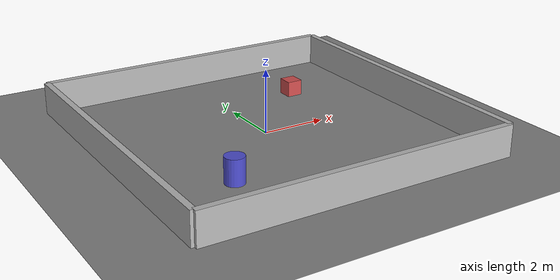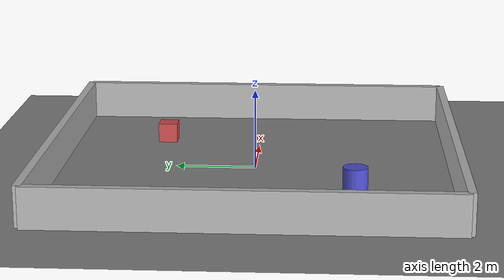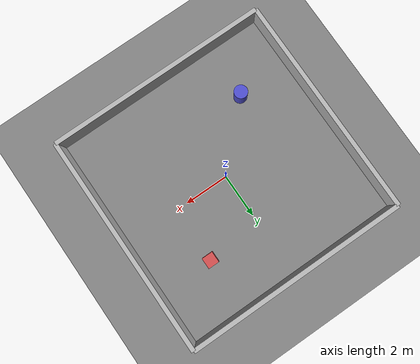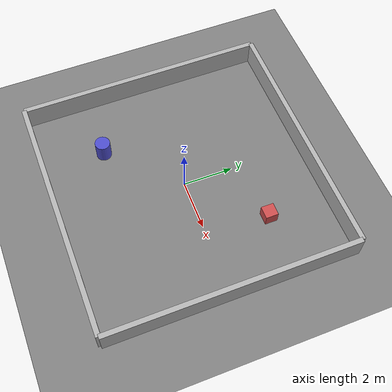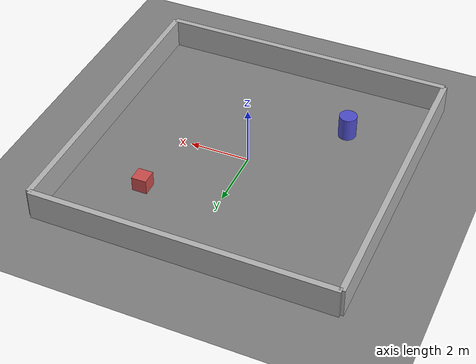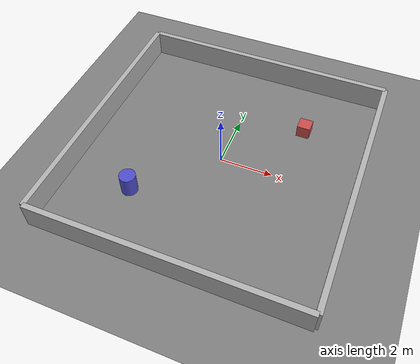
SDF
<?xml version="1.0"?>
<sdf version="1.9">
  <world name="simple_room">
    <physics type="ode">
      <max_step_size>0.001</max_step_size>
      <real_time_factor>1.0</real_time_factor>
    </physics>
    <plugin filename="gz-sim-physics-system" name="gz::sim::systems::Physics"/>
    <plugin filename="gz-sim-scene-broadcaster-system" name="gz::sim::systems::SceneBroadcaster"/>
    <plugin filename="gz-sim-sensors-system" name="gz::sim::systems::Sensors">
      <render_engine>ogre2</render_engine>
    </plugin>
    <plugin filename="gz-sim-user-commands-system" name="gz::sim::systems::UserCommands"/>

    <light type="directional" name="sun">
      <cast_shadows>true</cast_shadows>
      <pose>0 0 10 0 0 0</pose>
      <diffuse>0.8 0.8 0.8 1</diffuse>
      <direction>-0.5 0.1 -0.9</direction>
    </light>

    <model name="ground_plane">
      <static>true</static>
      <link name="link">
        <collision name="collision">
          <geometry><plane><normal>0 0 1</normal><size>10 10</size></plane></geometry>
        </collision>
        <visual name="visual">
          <geometry><plane><normal>0 0 1</normal><size>10 10</size></plane></geometry>
          <material><ambient>0.5 0.5 0.5 1</ambient><diffuse>0.5 0.5 0.5 1</diffuse></material>
        </visual>
      </link>
    </model>

    <model name="wall_north">
      <static>true</static>
      <pose>0 5 0.5 0 0 0</pose>
      <link name="link">
        <collision name="collision"><geometry><box><size>10 0.2 1</size></box></geometry></collision>
        <visual name="visual"><geometry><box><size>10 0.2 1</size></box></geometry>
          <material><ambient>0.7 0.7 0.7 1</ambient><diffuse>0.7 0.7 0.7 1</diffuse></material>
        </visual>
      </link>
    </model>

    <model name="wall_south">
      <static>true</static>
      <pose>0 -5 0.5 0 0 0</pose>
      <link name="link">
        <collision name="collision"><geometry><box><size>10 0.2 1</size></box></geometry></collision>
        <visual name="visual"><geometry><box><size>10 0.2 1</size></box></geometry>
          <material><ambient>0.7 0.7 0.7 1</ambient><diffuse>0.7 0.7 0.7 1</diffuse></material>
        </visual>
      </link>
    </model>

    <model name="wall_east">
      <static>true</static>
      <pose>5 0 0.5 0 0 1.5708</pose>
      <link name="link">
        <collision name="collision"><geometry><box><size>10 0.2 1</size></box></geometry></collision>
        <visual name="visual"><geometry><box><size>10 0.2 1</size></box></geometry>
          <material><ambient>0.7 0.7 0.7 1</ambient><diffuse>0.7 0.7 0.7 1</diffuse></material>
        </visual>
      </link>
    </model>

    <model name="wall_west">
      <static>true</static>
      <pose>-5 0 0.5 0 0 1.5708</pose>
      <link name="link">
        <collision name="collision"><geometry><box><size>10 0.2 1</size></box></geometry></collision>
        <visual name="visual"><geometry><box><size>10 0.2 1</size></box></geometry>
          <material><ambient>0.7 0.7 0.7 1</ambient><diffuse>0.7 0.7 0.7 1</diffuse></material>
        </visual>
      </link>
    </model>

    <model name="obstacle_box_1">
      <static>true</static>
      <pose>2.5 2.5 0.25 0 0 0</pose>
      <link name="link">
        <collision name="collision"><geometry><box><size>0.5 0.5 0.5</size></box></geometry></collision>
        <visual name="visual"><geometry><box><size>0.5 0.5 0.5</size></box></geometry>
          <material><ambient>0.8 0.3 0.3 1</ambient><diffuse>0.8 0.3 0.3 1</diffuse></material>
        </visual>
      </link>
    </model>

    <model name="obstacle_cylinder_1">
      <static>true</static>
      <pose>-2.5 -2.5 0.4 0 0 0</pose>
      <link name="link">
        <collision name="collision"><geometry><cylinder><radius>0.3</radius><length>0.8</length></cylinder></geometry></collision>
        <visual name="visual"><geometry><cylinder><radius>0.3</radius><length>0.8</length></cylinder></geometry>
          <material><ambient>0.3 0.3 0.8 1</ambient><diffuse>0.3 0.3 0.8 1</diffuse></material>
        </visual>
      </link>
    </model>

  </world>
</sdf>
